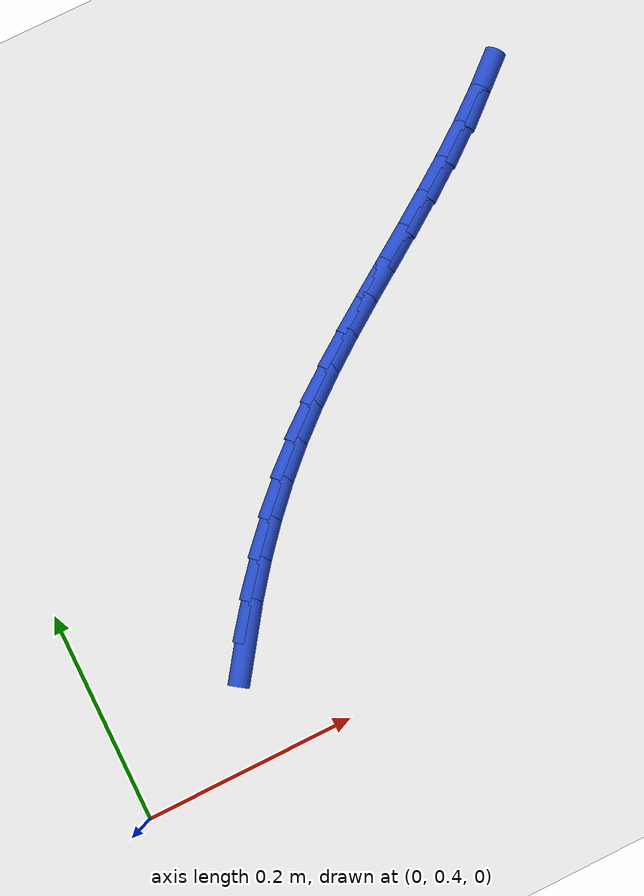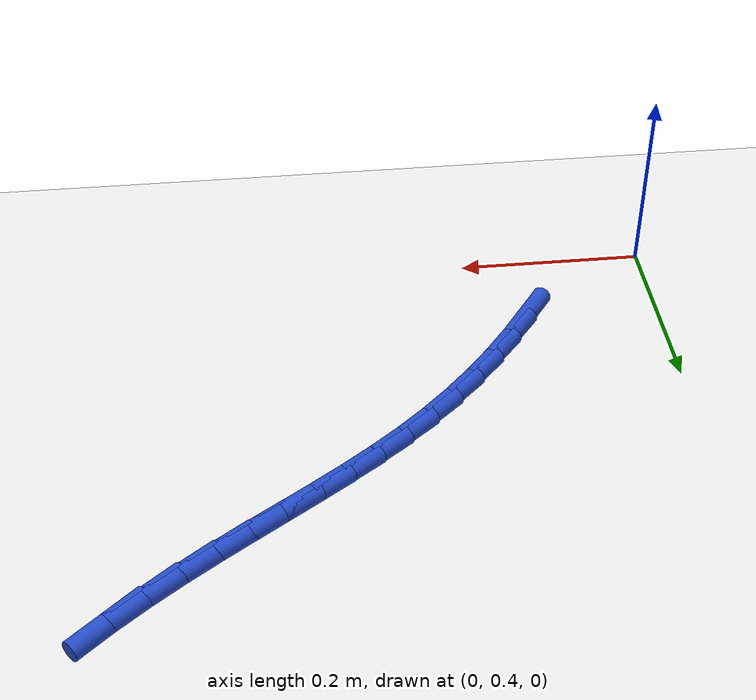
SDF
<sdf version="1.6">
 <world name="default">
  <model name="ground_plane">
   <static>1</static>
   <link name="link">
    <collision name="collision">
     <geometry><plane><normal>0 0 1</normal><size>100 100</size></plane></geometry>
     <surface><friction><ode><mu>100</mu><mu2>50</mu2></ode></friction></surface>
    </collision>
    <visual name="visual">
     <cast_shadows>0</cast_shadows>
     <geometry><plane><normal>0 0 1</normal><size>100 100</size></plane></geometry>
     <material>
      <script><uri>file://media/materials/scripts/gazebo.material</uri><name>Gazebo/WhiteGlow</name></script>
     </material>
    </visual>
   </link>
  </model>
  <model name="line">
   <link name="link_14">
    <pose>0.14514993396000475 0.5021971914049159 0.01 0 1.57 0.9561434220914788</pose>
    <collision name="collision">
     <geometry><cylinder><radius>0.01</radius><length>0.08</length></cylinder></geometry>
    </collision>
    <visual name="visual">
     <material>
      <script><name>Gazebo/Blue</name><uri>file://media/materials/scripts/gazebo.material</uri></script>
     </material>
     <geometry><cylinder><radius>0.01</radius><length>0.08</length></cylinder></geometry>
    </visual>
   </link>
   <link name="link_15">
    <pose>0.16713949560669208 0.5333497347499172 0.01 0 1.57 0.9103135712230511</pose>
    <collision name="collision">
     <geometry><cylinder><radius>0.01</radius><length>0.08</length></cylinder></geometry>
    </collision>
    <visual name="visual">
     <material>
      <script><name>Gazebo/Blue</name><uri>file://media/materials/scripts/gazebo.material</uri></script>
     </material>
     <geometry><cylinder><radius>0.01</radius><length>0.08</length></cylinder></geometry>
    </visual>
   </link>
   <link name="link_16">
    <pose>0.19044139691385803 0.5633439926467791 0.01 0 1.57 0.8636568909752695</pose>
    <collision name="collision">
     <geometry><cylinder><radius>0.01</radius><length>0.08</length></cylinder></geometry>
    </collision>
    <visual name="visual">
     <material>
      <script><name>Gazebo/Blue</name><uri>file://media/materials/scripts/gazebo.material</uri></script>
     </material>
     <geometry><cylinder><radius>0.01</radius><length>0.08</length></cylinder></geometry>
    </visual>
   </link>
   <link name="link_17">
    <pose>0.2149863082589912 0.5920660393572788 0.01 0 1.57 0.8158728126195844</pose>
    <collision name="collision">
     <geometry><cylinder><radius>0.01</radius><length>0.08</length></cylinder></geometry>
    </collision>
    <visual name="visual">
     <material>
      <script><name>Gazebo/Blue</name><uri>file://media/materials/scripts/gazebo.material</uri></script>
     </material>
     <geometry><cylinder><radius>0.01</radius><length>0.08</length></cylinder></geometry>
    </visual>
   </link>
   <link name="link_18">
    <pose>0.24070490001958017 0.6194019491431924 0.01 0 1.57 0.7666552366079411</pose>
    <collision name="collision">
     <geometry><cylinder><radius>0.01</radius><length>0.08</length></cylinder></geometry>
    </collision>
    <visual name="visual">
     <material>
      <script><name>Gazebo/Blue</name><uri>file://media/materials/scripts/gazebo.material</uri></script>
     </material>
     <geometry><cylinder><radius>0.01</radius><length>0.08</length></cylinder></geometry>
    </visual>
   </link>
   <link name="link_19">
    <pose>0.26752784257311335 0.6452377962662971 0.01 0 1.57 0.7161076845523342</pose>
    <collision name="collision">
     <geometry><cylinder><radius>0.01</radius><length>0.08</length></cylinder></geometry>
    </collision>
    <visual name="visual">
     <material>
      <script><name>Gazebo/Blue</name><uri>file://media/materials/scripts/gazebo.material</uri></script>
     </material>
     <geometry><cylinder><radius>0.01</radius><length>0.08</length></cylinder></geometry>
    </visual>
   </link>
   <link name="link_20">
    <pose>0.2953824990235863 0.669477052648196 0.01 0 1.57 0.6703020813102444</pose>
    <collision name="collision">
     <geometry><cylinder><radius>0.01</radius><length>0.08</length></cylinder></geometry>
    </collision>
    <visual name="visual">
     <material>
      <script><name>Gazebo/Blue</name><uri>file://media/materials/scripts/gazebo.material</uri></script>
     </material>
     <geometry><cylinder><radius>0.01</radius><length>0.08</length></cylinder></geometry>
    </visual>
   </link>
   <link name="link_21">
    <pose>0.32414735993053084 0.6922802805010936 0.01 0 1.57 0.6344823692075793</pose>
    <collision name="collision">
     <geometry><cylinder><radius>0.01</radius><length>0.08</length></cylinder></geometry>
    </collision>
    <visual name="visual">
     <material>
      <script><name>Gazebo/Blue</name><uri>file://media/materials/scripts/gazebo.material</uri></script>
     </material>
     <geometry><cylinder><radius>0.01</radius><length>0.08</length></cylinder></geometry>
    </visual>
   </link>
   <link name="link_22">
    <pose>0.3536636052823329 0.7140043114494673 0.01 0 1.57 0.6091887410259094</pose>
    <collision name="collision">
     <geometry><cylinder><radius>0.01</radius><length>0.08</length></cylinder></geometry>
    </collision>
    <visual name="visual">
     <material>
      <script><name>Gazebo/Blue</name><uri>file://media/materials/scripts/gazebo.material</uri></script>
     </material>
     <geometry><cylinder><radius>0.01</radius><length>0.08</length></cylinder></geometry>
    </visual>
   </link>
   <link name="link_23">
    <pose>0.3837714731374508 0.7350109320683031 0.01 0 1.57 0.5945743266580592</pose>
    <collision name="collision">
     <geometry><cylinder><radius>0.01</radius><length>0.08</length></cylinder></geometry>
    </collision>
    <visual name="visual">
     <material>
      <script><name>Gazebo/Blue</name><uri>file://media/materials/scripts/gazebo.material</uri></script>
     </material>
     <geometry><cylinder><radius>0.01</radius><length>0.08</length></cylinder></geometry>
    </visual>
   </link>
   <link name="link_24">
    <pose>0.4143112015543421 0.7556619289325864 0.01 0 1.57 0.5906031621618749</pose>
    <collision name="collision">
     <geometry><cylinder><radius>0.01</radius><length>0.08</length></cylinder></geometry>
    </collision>
    <visual name="visual">
     <material>
      <script><name>Gazebo/Blue</name><uri>file://media/materials/scripts/gazebo.material</uri></script>
     </material>
     <geometry><cylinder><radius>0.01</radius><length>0.08</length></cylinder></geometry>
    </visual>
   </link>
   <link name="link_25">
    <pose>0.4451230285914648 0.7763190886173033 0.01 0 1.57 0.5971031915808017</pose>
    <collision name="collision">
     <geometry><cylinder><radius>0.01</radius><length>0.08</length></cylinder></geometry>
    </collision>
    <visual name="visual">
     <material>
      <script><name>Gazebo/Blue</name><uri>file://media/materials/scripts/gazebo.material</uri></script>
     </material>
     <geometry><cylinder><radius>0.01</radius><length>0.08</length></cylinder></geometry>
    </visual>
   </link>
   <link name="link_26">
    <pose>0.47604719230727727 0.7973441976974392 0.01 0 1.57 0.6137869619989732</pose>
    <collision name="collision">
     <geometry><cylinder><radius>0.01</radius><length>0.08</length></cylinder></geometry>
    </collision>
    <visual name="visual">
     <material>
      <script><name>Gazebo/Blue</name><uri>file://media/materials/scripts/gazebo.material</uri></script>
     </material>
     <geometry><cylinder><radius>0.01</radius><length>0.08</length></cylinder></geometry>
    </visual>
   </link>
   <link name="link_27">
    <pose>0.5069239307602369 0.8190990427479798 0.01 0 1.57 0.640242088138318</pose>
    <collision name="collision">
     <geometry><cylinder><radius>0.01</radius><length>0.08</length></cylinder></geometry>
    </collision>
    <visual name="visual">
     <material>
      <script><name>Gazebo/Blue</name><uri>file://media/materials/scripts/gazebo.material</uri></script>
     </material>
     <geometry><cylinder><radius>0.01</radius><length>0.08</length></cylinder></geometry>
    </visual>
   </link>
   <link name="link_28">
    <pose>0.5375934820088019 0.8419454103439106 0.01 0 1.57 0.6758988090316247</pose>
    <collision name="collision">
     <geometry><cylinder><radius>0.01</radius><length>0.08</length></cylinder></geometry>
    </collision>
    <visual name="visual">
     <material>
      <script><name>Gazebo/Blue</name><uri>file://media/materials/scripts/gazebo.material</uri></script>
     </material>
     <geometry><cylinder><radius>0.01</radius><length>0.08</length></cylinder></geometry>
    </visual>
   </link>
   <link name="link_29">
    <pose>0.5678960841114301 0.8662450870602177 0.01 0 1.57 0.7199866024371995</pose>
    <collision name="collision">
     <geometry><cylinder><radius>0.01</radius><length>0.08</length></cylinder></geometry>
    </collision>
    <visual name="visual">
     <material>
      <script><name>Gazebo/Blue</name><uri>file://media/materials/scripts/gazebo.material</uri></script>
     </material>
     <geometry><cylinder><radius>0.01</radius><length>0.08</length></cylinder></geometry>
    </visual>
   </link>
  </model>
 </world>
</sdf>
